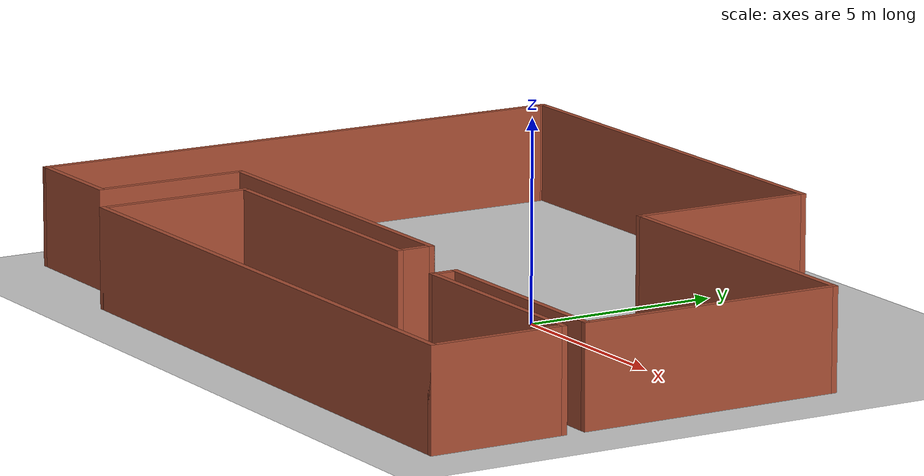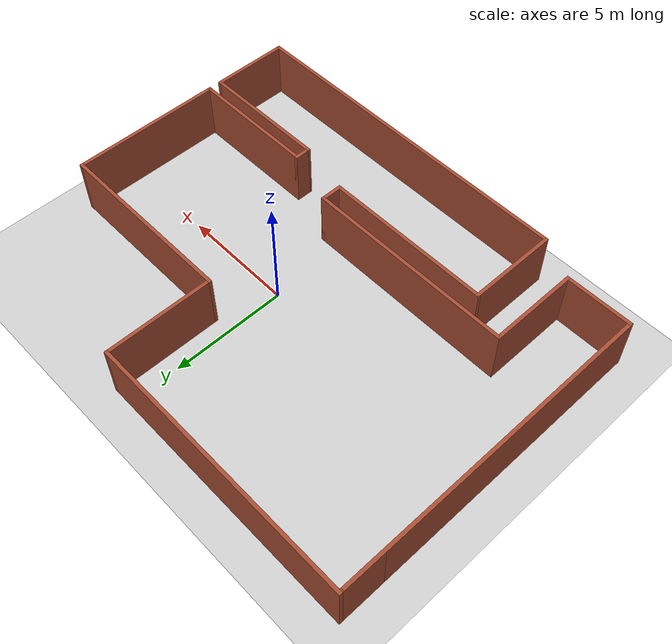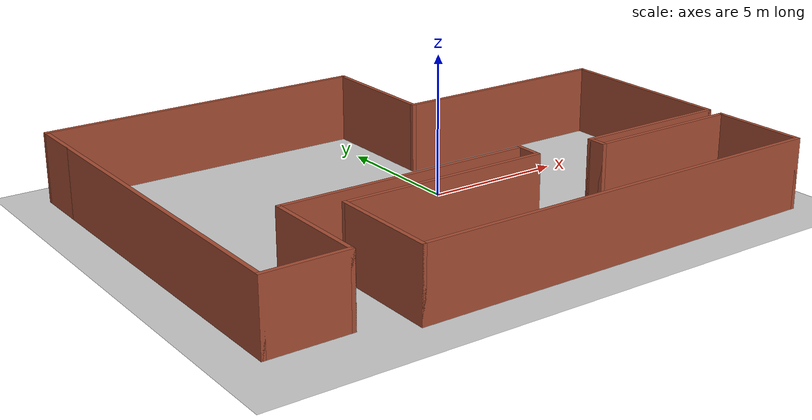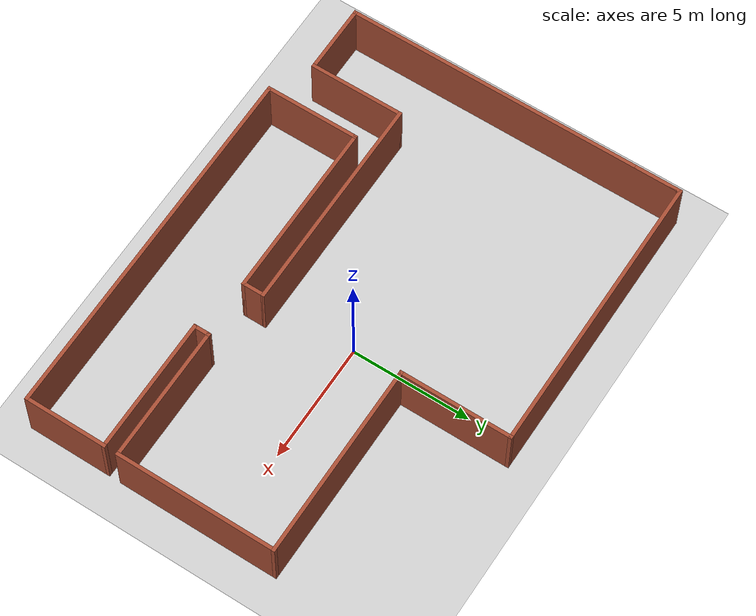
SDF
<sdf version="1.7">
 <world name="default">
  <light name="sun" type="directional">
   <pose>0 0 10 0 -0 0</pose>
   <diffuse>0.8 0.8 0.8 1</diffuse>
   <specular>0.2 0.2 0.2 1</specular>
   <attenuation>
    <range>1000</range>
    <constant>0.9</constant>
    <linear>0.01</linear>
    <quadratic>0.001</quadratic>
   </attenuation>
   <direction>-0.5 0.1 -0.9</direction>
   <spot><inner_angle>0</inner_angle><outer_angle>0</outer_angle><falloff>0</falloff></spot>
  </light>
  <model name="ground_plane">
   <static>1</static>
   <link name="link">
    <collision name="collision">
     <geometry><plane><normal>0 0 1</normal><size>100 100</size></plane></geometry>
     <surface>
      <contact><collide_bitmask>65535</collide_bitmask></contact>
      <friction><ode><mu>100</mu><mu2>50</mu2></ode></friction>
     </surface>
    </collision>
    <visual name="visual">
     <cast_shadows>0</cast_shadows>
     <geometry><plane><normal>0 0 1</normal><size>100 100</size></plane></geometry>
     <material>
      <script><uri>file://media/materials/scripts/gazebo.material</uri><name>Gazebo/Grey</name></script>
     </material>
    </visual>
   </link>
  </model>
  <gravity>0 0 -9.8</gravity>
  <magnetic_field>6e-06 2.3e-05 -4.2e-05</magnetic_field>
  <atmosphere type="adiabatic"/>
  <physics type="ode">
   <max_step_size>0.001</max_step_size>
   <real_time_factor>1</real_time_factor>
   <real_time_update_rate>1000</real_time_update_rate>
  </physics>
  <scene><ambient>0.4 0.4 0.4 1</ambient><background>0.7 0.7 0.7 1</background><shadows>1</shadows></scene>
  <audio><device>default</device></audio>
  <spherical_coordinates>
   <surface_model>EARTH_WGS84</surface_model>
   <latitude_deg>0</latitude_deg>
   <longitude_deg>0</longitude_deg>
   <elevation>0</elevation>
   <heading_deg>0</heading_deg>
  </spherical_coordinates>
  <model name="Untitled">
   <pose>-1.08871 -0.435278 0 0 -0 0</pose>
   <link name="Wall_17">
    <collision name="Wall_17_Collision">
     <geometry><box><size>14.25 0.15 2.5</size></box></geometry>
     <pose>0 0 1.25 0 -0 0</pose>
    </collision>
    <visual name="Wall_17_Visual">
     <pose>0 0 1.25 0 -0 0</pose>
     <geometry><box><size>14.25 0.15 2.5</size></box></geometry>
     <material>
      <script><uri>file://media/materials/scripts/gazebo.material</uri><name>Gazebo/Bricks</name></script>
      <ambient>1 1 1 1</ambient>
     </material>
     <meta><layer>0</layer></meta>
    </visual>
    <pose>-9.975 0.325 0 0 -0 -1.5708</pose>
   </link>
   <link name="Wall_18">
    <collision name="Wall_18_Collision">
     <geometry><box><size>3 0.15 2.5</size></box></geometry>
     <pose>0 0 1.25 0 -0 0</pose>
    </collision>
    <visual name="Wall_18_Visual">
     <pose>0 0 1.25 0 -0 0</pose>
     <geometry><box><size>3 0.15 2.5</size></box></geometry>
     <material>
      <script><uri>file://media/materials/scripts/gazebo.material</uri><name>Gazebo/Bricks</name></script>
      <ambient>1 1 1 1</ambient>
     </material>
     <meta><layer>0</layer></meta>
    </visual>
    <pose>-8.55 -6.725 0 0 -0 0</pose>
   </link>
   <link name="Wall_19">
    <collision name="Wall_19_Collision">
     <geometry><box><size>4 0.15 2.5</size></box></geometry>
     <pose>0 0 1.25 0 -0 0</pose>
    </collision>
    <visual name="Wall_19_Visual">
     <pose>0 0 1.25 0 -0 0</pose>
     <geometry><box><size>4 0.15 2.5</size></box></geometry>
     <material>
      <script><uri>file://media/materials/scripts/gazebo.material</uri><name>Gazebo/Bricks</name></script>
      <ambient>1 1 1 1</ambient>
     </material>
     <meta><layer>0</layer></meta>
    </visual>
    <pose>-7.125 -4.8 0 0 -0 1.5708</pose>
   </link>
   <link name="Wall_20">
    <collision name="Wall_20_Collision">
     <geometry><box><size>9.25 0.15 2.5</size></box></geometry>
     <pose>0 0 1.25 0 -0 0</pose>
    </collision>
    <visual name="Wall_20_Visual">
     <pose>0 0 1.25 0 -0 0</pose>
     <geometry><box><size>9.25 0.15 2.5</size></box></geometry>
     <material>
      <script><uri>file://media/materials/scripts/gazebo.material</uri><name>Gazebo/Bricks</name></script>
      <ambient>1 1 1 1</ambient>
     </material>
     <meta><layer>0</layer></meta>
    </visual>
    <pose>-2.575 -2.875 0 0 -0 0</pose>
   </link>
   <link name="Wall_21">
    <collision name="Wall_21_Collision">
     <geometry><box><size>1 0.15 2.5</size></box></geometry>
     <pose>0 0 1.25 0 -0 0</pose>
    </collision>
    <visual name="Wall_21_Visual">
     <pose>0 0 1.25 0 -0 0</pose>
     <geometry><box><size>1 0.15 2.5</size></box></geometry>
     <material>
      <script><uri>file://media/materials/scripts/gazebo.material</uri><name>Gazebo/Bricks</name></script>
      <ambient>1 1 1 1</ambient>
     </material>
     <meta><layer>0</layer></meta>
    </visual>
    <pose>1.975 -3.3 0 0 -0 -1.5708</pose>
   </link>
   <link name="Wall_22">
    <collision name="Wall_22_Collision">
     <geometry><box><size>7.5 0.15 2.5</size></box></geometry>
     <pose>0 0 1.25 0 -0 0</pose>
    </collision>
    <visual name="Wall_22_Visual">
     <pose>0 0 1.25 0 -0 0</pose>
     <geometry><box><size>7.5 0.15 2.5</size></box></geometry>
     <material>
      <script><uri>file://media/materials/scripts/gazebo.material</uri><name>Gazebo/Bricks</name></script>
      <ambient>1 1 1 1</ambient>
     </material>
     <meta><layer>0</layer></meta>
    </visual>
    <pose>-1.7 -3.725 0 0 -0 3.14159</pose>
   </link>
   <link name="Wall_23">
    <collision name="Wall_23_Collision">
     <geometry><box><size>4 0.15 2.5</size></box></geometry>
     <pose>0 0 1.25 0 -0 0</pose>
    </collision>
    <visual name="Wall_23_Visual">
     <pose>0 0 1.25 0 -0 0</pose>
     <geometry><box><size>4 0.15 2.5</size></box></geometry>
     <material>
      <script><uri>file://media/materials/scripts/gazebo.material</uri><name>Gazebo/Bricks</name></script>
      <ambient>1 1 1 1</ambient>
     </material>
     <meta><layer>0</layer></meta>
    </visual>
    <pose>-5.375 -5.65 0 0 -0 -1.5708</pose>
   </link>
   <link name="Wall_24">
    <collision name="Wall_24_Collision">
     <geometry><box><size>15.5 0.15 2.5</size></box></geometry>
     <pose>0 0 1.25 0 -0 0</pose>
    </collision>
    <visual name="Wall_24_Visual">
     <pose>0 0 1.25 0 -0 0</pose>
     <geometry><box><size>15.5 0.15 2.5</size></box></geometry>
     <material>
      <script><uri>file://media/materials/scripts/gazebo.material</uri><name>Gazebo/Bricks</name></script>
      <ambient>1 1 1 1</ambient>
     </material>
     <meta><layer>0</layer></meta>
    </visual>
    <pose>2.3 -7.575 0 0 -0 0</pose>
   </link>
   <link name="Wall_25">
    <collision name="Wall_25_Collision">
     <geometry><box><size>3.5 0.15 2.5</size></box></geometry>
     <pose>0 0 1.25 0 -0 0</pose>
    </collision>
    <visual name="Wall_25_Visual">
     <pose>0 0 1.25 0 -0 0</pose>
     <geometry><box><size>3.5 0.15 2.5</size></box></geometry>
     <material>
      <script><uri>file://media/materials/scripts/gazebo.material</uri><name>Gazebo/Bricks</name></script>
      <ambient>1 1 1 1</ambient>
     </material>
     <meta><layer>0</layer></meta>
    </visual>
    <pose>9.975 -5.9 0 0 -0 1.5708</pose>
   </link>
   <link name="Wall_26">
    <collision name="Wall_26_Collision">
     <geometry><box><size>5.75 0.15 2.5</size></box></geometry>
     <pose>0 0 1.25 0 -0 0</pose>
    </collision>
    <visual name="Wall_26_Visual">
     <pose>0 0 1.25 0 -0 0</pose>
     <geometry><box><size>5.75 0.15 2.5</size></box></geometry>
     <material>
      <script><uri>file://media/materials/scripts/gazebo.material</uri><name>Gazebo/Bricks</name></script>
      <ambient>1 1 1 1</ambient>
     </material>
     <meta><layer>0</layer></meta>
    </visual>
    <pose>7.175 -4.225 0 0 -0 3.14159</pose>
   </link>
   <link name="Wall_27">
    <collision name="Wall_27_Collision">
     <geometry><box><size>0.75 0.15 2.5</size></box></geometry>
     <pose>0 0 1.25 0 -0 0</pose>
    </collision>
    <visual name="Wall_27_Visual">
     <pose>0 0 1.25 0 -0 0</pose>
     <geometry><box><size>0.75 0.15 2.5</size></box></geometry>
     <material>
      <script><uri>file://media/materials/scripts/gazebo.material</uri><name>Gazebo/Bricks</name></script>
      <ambient>1 1 1 1</ambient>
     </material>
     <meta><layer>0</layer></meta>
    </visual>
    <pose>4.375 -3.925 0 0 -0 1.5708</pose>
   </link>
   <link name="Wall_28">
    <collision name="Wall_28_Collision">
     <geometry><box><size>5.75 0.15 2.5</size></box></geometry>
     <pose>0 0 1.25 0 -0 0</pose>
    </collision>
    <visual name="Wall_28_Visual">
     <pose>0 0 1.25 0 -0 0</pose>
     <geometry><box><size>5.75 0.15 2.5</size></box></geometry>
     <material>
      <script><uri>file://media/materials/scripts/gazebo.material</uri><name>Gazebo/Bricks</name></script>
      <ambient>1 1 1 1</ambient>
     </material>
     <meta><layer>0</layer></meta>
    </visual>
    <pose>7.175 -3.625 0 0 -0 0</pose>
   </link>
   <link name="Wall_29">
    <collision name="Wall_29_Collision">
     <geometry><box><size>6.75 0.15 2.5</size></box></geometry>
     <pose>0 0 1.25 0 -0 0</pose>
    </collision>
    <visual name="Wall_29_Visual">
     <pose>0 0 1.25 0 -0 0</pose>
     <geometry><box><size>6.75 0.15 2.5</size></box></geometry>
     <material>
      <script><uri>file://media/materials/scripts/gazebo.material</uri><name>Gazebo/Bricks</name></script>
      <ambient>1 1 1 1</ambient>
     </material>
     <meta><layer>0</layer></meta>
    </visual>
    <pose>9.975 -0.325 0 0 -0 1.5708</pose>
   </link>
   <link name="Wall_30">
    <collision name="Wall_30_Collision">
     <geometry><box><size>8.25 0.15 2.5</size></box></geometry>
     <pose>0 0 1.25 0 -0 0</pose>
    </collision>
    <visual name="Wall_30_Visual">
     <pose>0 0 1.25 0 -0 0</pose>
     <geometry><box><size>8.25 0.15 2.5</size></box></geometry>
     <material>
      <script><uri>file://media/materials/scripts/gazebo.material</uri><name>Gazebo/Bricks</name></script>
      <ambient>1 1 1 1</ambient>
     </material>
     <meta><layer>0</layer></meta>
    </visual>
    <pose>5.925 2.975 0 0 -0 3.14159</pose>
   </link>
   <link name="Wall_31">
    <collision name="Wall_31_Collision">
     <geometry><box><size>4.75 0.15 2.5</size></box></geometry>
     <pose>0 0 1.25 0 -0 0</pose>
    </collision>
    <visual name="Wall_31_Visual">
     <pose>0 0 1.25 0 -0 0</pose>
     <geometry><box><size>4.75 0.15 2.5</size></box></geometry>
     <material>
      <script><uri>file://media/materials/scripts/gazebo.material</uri><name>Gazebo/Bricks</name></script>
      <ambient>1 1 1 1</ambient>
     </material>
     <meta><layer>0</layer></meta>
    </visual>
    <pose>1.875 5.275 0 0 -0 1.5708</pose>
   </link>
   <link name="Wall_32">
    <collision name="Wall_32_Collision">
     <geometry><box><size>12 0.15 2.5</size></box></geometry>
     <pose>0 0 1.25 0 -0 0</pose>
    </collision>
    <visual name="Wall_32_Visual">
     <pose>0 0 1.25 0 -0 0</pose>
     <geometry><box><size>12 0.15 2.5</size></box></geometry>
     <material>
      <script><uri>file://media/materials/scripts/gazebo.material</uri><name>Gazebo/Bricks</name></script>
      <ambient>1 1 1 1</ambient>
     </material>
     <meta><layer>0</layer></meta>
    </visual>
    <pose>-4.05 7.575 0 0 -0 3.14159</pose>
   </link>
   <link name="Wall_33">
    <collision name="Wall_33_Collision">
     <geometry><box><size>2 0.15 2.5</size></box></geometry>
     <pose>0 0 1.25 0 -0 0</pose>
    </collision>
    <visual name="Wall_33_Visual">
     <pose>0 0 1.25 0 -0 0</pose>
     <geometry><box><size>2 0.15 2.5</size></box></geometry>
     <material>
      <script><uri>file://media/materials/scripts/gazebo.material</uri><name>Gazebo/Bricks</name></script>
      <ambient>1 1 1 1</ambient>
     </material>
     <meta><layer>0</layer></meta>
    </visual>
    <pose>-9.975 6.65 0 0 -0 -1.5708</pose>
   </link>
   <static>1</static>
  </model>
 </world>
</sdf>
